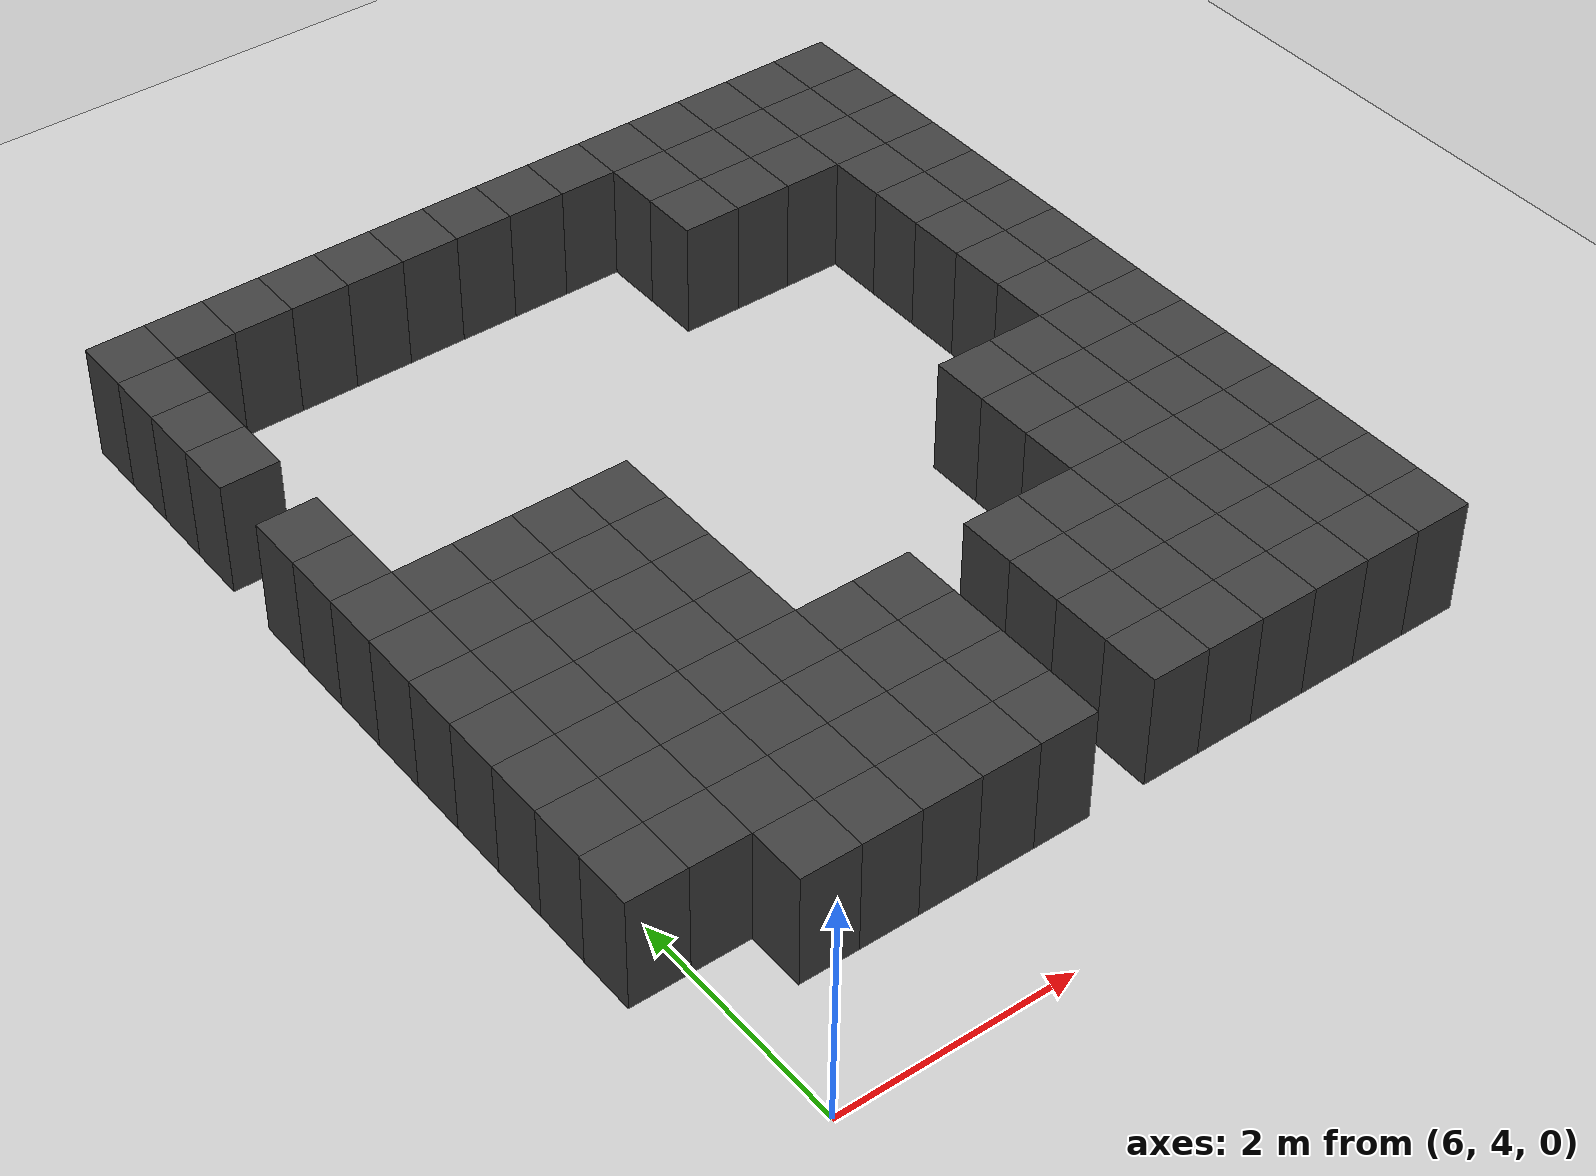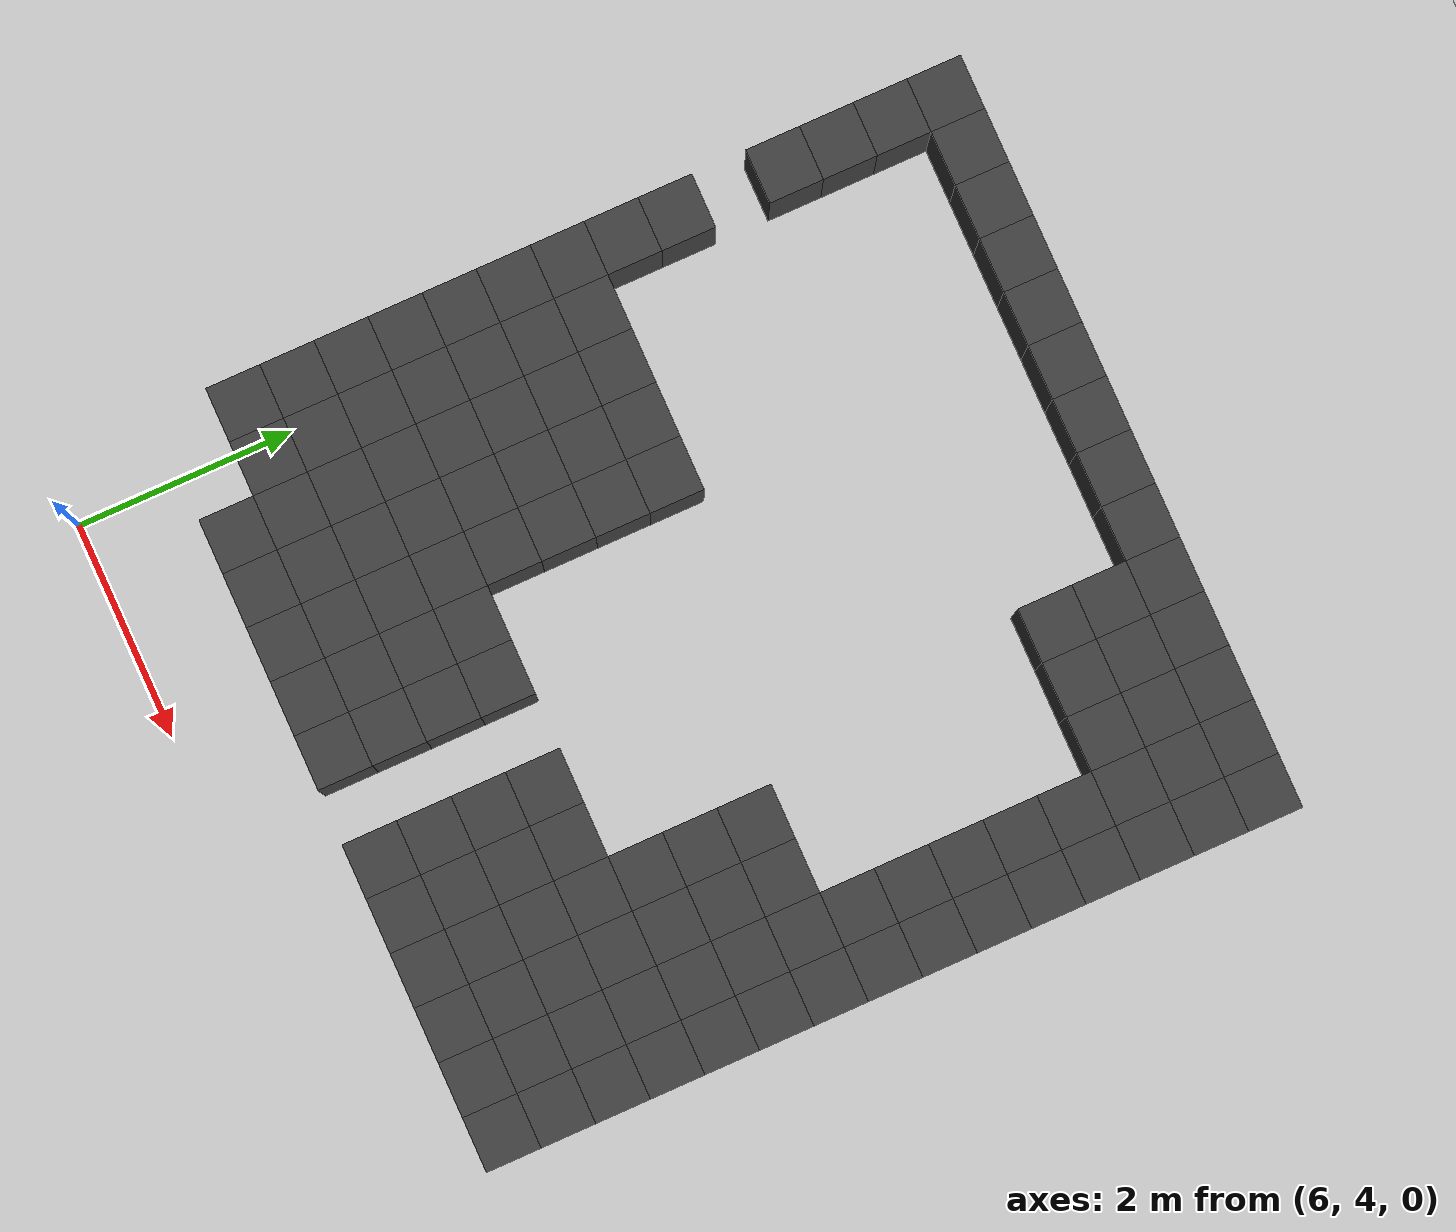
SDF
<sdf version="1.7">
 <world name="map_14706">
  <model name="ground_plane">
   <static>true</static>
   <link name="link">
    <collision name="collision">
     <geometry><plane><normal>0 0 1</normal><size>200 200</size></plane></geometry>
    </collision>
    <visual name="visual">
     <geometry><plane><normal>0 0 1</normal><size>200 200</size></plane></geometry>
     <material><ambient>0.8 0.8 0.8 1</ambient><diffuse>0.8 0.8 0.8 1</diffuse></material>
    </visual>
   </link>
  </model>
  <model name="maze_environment">
   <static>true</static>
   <link name="wall_36">
    <pose>5.750 12.250 0.500 0 0 0</pose>
    <collision name="col"><geometry><box><size>0.5 0.5 1.0</size></box></geometry></collision>
    <visual name="vis">
     <geometry><box><size>0.5 0.5 1.0</size></box></geometry>
     <material><ambient>0.15 0.15 0.15 1</ambient><diffuse>0.25 0.25 0.25 1</diffuse></material>
    </visual>
   </link>
   <link name="wall_37">
    <pose>6.250 12.250 0.500 0 0 0</pose>
    <collision name="col"><geometry><box><size>0.5 0.5 1.0</size></box></geometry></collision>
    <visual name="vis">
     <geometry><box><size>0.5 0.5 1.0</size></box></geometry>
     <material><ambient>0.15 0.15 0.15 1</ambient><diffuse>0.25 0.25 0.25 1</diffuse></material>
    </visual>
   </link>
   <link name="wall_38">
    <pose>6.750 12.250 0.500 0 0 0</pose>
    <collision name="col"><geometry><box><size>0.5 0.5 1.0</size></box></geometry></collision>
    <visual name="vis">
     <geometry><box><size>0.5 0.5 1.0</size></box></geometry>
     <material><ambient>0.15 0.15 0.15 1</ambient><diffuse>0.25 0.25 0.25 1</diffuse></material>
    </visual>
   </link>
   <link name="wall_39">
    <pose>7.250 12.250 0.500 0 0 0</pose>
    <collision name="col"><geometry><box><size>0.5 0.5 1.0</size></box></geometry></collision>
    <visual name="vis">
     <geometry><box><size>0.5 0.5 1.0</size></box></geometry>
     <material><ambient>0.15 0.15 0.15 1</ambient><diffuse>0.25 0.25 0.25 1</diffuse></material>
    </visual>
   </link>
   <link name="wall_40">
    <pose>7.750 12.250 0.500 0 0 0</pose>
    <collision name="col"><geometry><box><size>0.5 0.5 1.0</size></box></geometry></collision>
    <visual name="vis">
     <geometry><box><size>0.5 0.5 1.0</size></box></geometry>
     <material><ambient>0.15 0.15 0.15 1</ambient><diffuse>0.25 0.25 0.25 1</diffuse></material>
    </visual>
   </link>
   <link name="wall_41">
    <pose>8.250 12.250 0.500 0 0 0</pose>
    <collision name="col"><geometry><box><size>0.5 0.5 1.0</size></box></geometry></collision>
    <visual name="vis">
     <geometry><box><size>0.5 0.5 1.0</size></box></geometry>
     <material><ambient>0.15 0.15 0.15 1</ambient><diffuse>0.25 0.25 0.25 1</diffuse></material>
    </visual>
   </link>
   <link name="wall_42">
    <pose>8.750 12.250 0.500 0 0 0</pose>
    <collision name="col"><geometry><box><size>0.5 0.5 1.0</size></box></geometry></collision>
    <visual name="vis">
     <geometry><box><size>0.5 0.5 1.0</size></box></geometry>
     <material><ambient>0.15 0.15 0.15 1</ambient><diffuse>0.25 0.25 0.25 1</diffuse></material>
    </visual>
   </link>
   <link name="wall_43">
    <pose>9.250 12.250 0.500 0 0 0</pose>
    <collision name="col"><geometry><box><size>0.5 0.5 1.0</size></box></geometry></collision>
    <visual name="vis">
     <geometry><box><size>0.5 0.5 1.0</size></box></geometry>
     <material><ambient>0.15 0.15 0.15 1</ambient><diffuse>0.25 0.25 0.25 1</diffuse></material>
    </visual>
   </link>
   <link name="wall_44">
    <pose>9.750 12.250 0.500 0 0 0</pose>
    <collision name="col"><geometry><box><size>0.5 0.5 1.0</size></box></geometry></collision>
    <visual name="vis">
     <geometry><box><size>0.5 0.5 1.0</size></box></geometry>
     <material><ambient>0.15 0.15 0.15 1</ambient><diffuse>0.25 0.25 0.25 1</diffuse></material>
    </visual>
   </link>
   <link name="wall_45">
    <pose>10.250 12.250 0.500 0 0 0</pose>
    <collision name="col"><geometry><box><size>0.5 0.5 1.0</size></box></geometry></collision>
    <visual name="vis">
     <geometry><box><size>0.5 0.5 1.0</size></box></geometry>
     <material><ambient>0.15 0.15 0.15 1</ambient><diffuse>0.25 0.25 0.25 1</diffuse></material>
    </visual>
   </link>
   <link name="wall_46">
    <pose>10.750 12.250 0.500 0 0 0</pose>
    <collision name="col"><geometry><box><size>0.5 0.5 1.0</size></box></geometry></collision>
    <visual name="vis">
     <geometry><box><size>0.5 0.5 1.0</size></box></geometry>
     <material><ambient>0.15 0.15 0.15 1</ambient><diffuse>0.25 0.25 0.25 1</diffuse></material>
    </visual>
   </link>
   <link name="wall_47">
    <pose>11.250 12.250 0.500 0 0 0</pose>
    <collision name="col"><geometry><box><size>0.5 0.5 1.0</size></box></geometry></collision>
    <visual name="vis">
     <geometry><box><size>0.5 0.5 1.0</size></box></geometry>
     <material><ambient>0.15 0.15 0.15 1</ambient><diffuse>0.25 0.25 0.25 1</diffuse></material>
    </visual>
   </link>
   <link name="wall_48">
    <pose>11.750 12.250 0.500 0 0 0</pose>
    <collision name="col"><geometry><box><size>0.5 0.5 1.0</size></box></geometry></collision>
    <visual name="vis">
     <geometry><box><size>0.5 0.5 1.0</size></box></geometry>
     <material><ambient>0.15 0.15 0.15 1</ambient><diffuse>0.25 0.25 0.25 1</diffuse></material>
    </visual>
   </link>
   <link name="wall_49">
    <pose>12.250 12.250 0.500 0 0 0</pose>
    <collision name="col"><geometry><box><size>0.5 0.5 1.0</size></box></geometry></collision>
    <visual name="vis">
     <geometry><box><size>0.5 0.5 1.0</size></box></geometry>
     <material><ambient>0.15 0.15 0.15 1</ambient><diffuse>0.25 0.25 0.25 1</diffuse></material>
    </visual>
   </link>
   <link name="wall_83">
    <pose>5.750 11.750 0.500 0 0 0</pose>
    <collision name="col"><geometry><box><size>0.5 0.5 1.0</size></box></geometry></collision>
    <visual name="vis">
     <geometry><box><size>0.5 0.5 1.0</size></box></geometry>
     <material><ambient>0.15 0.15 0.15 1</ambient><diffuse>0.25 0.25 0.25 1</diffuse></material>
    </visual>
   </link>
   <link name="wall_84">
    <pose>10.250 11.750 0.500 0 0 0</pose>
    <collision name="col"><geometry><box><size>0.5 0.5 1.0</size></box></geometry></collision>
    <visual name="vis">
     <geometry><box><size>0.5 0.5 1.0</size></box></geometry>
     <material><ambient>0.15 0.15 0.15 1</ambient><diffuse>0.25 0.25 0.25 1</diffuse></material>
    </visual>
   </link>
   <link name="wall_85">
    <pose>10.750 11.750 0.500 0 0 0</pose>
    <collision name="col"><geometry><box><size>0.5 0.5 1.0</size></box></geometry></collision>
    <visual name="vis">
     <geometry><box><size>0.5 0.5 1.0</size></box></geometry>
     <material><ambient>0.15 0.15 0.15 1</ambient><diffuse>0.25 0.25 0.25 1</diffuse></material>
    </visual>
   </link>
   <link name="wall_86">
    <pose>11.250 11.750 0.500 0 0 0</pose>
    <collision name="col"><geometry><box><size>0.5 0.5 1.0</size></box></geometry></collision>
    <visual name="vis">
     <geometry><box><size>0.5 0.5 1.0</size></box></geometry>
     <material><ambient>0.15 0.15 0.15 1</ambient><diffuse>0.25 0.25 0.25 1</diffuse></material>
    </visual>
   </link>
   <link name="wall_87">
    <pose>11.750 11.750 0.500 0 0 0</pose>
    <collision name="col"><geometry><box><size>0.5 0.5 1.0</size></box></geometry></collision>
    <visual name="vis">
     <geometry><box><size>0.5 0.5 1.0</size></box></geometry>
     <material><ambient>0.15 0.15 0.15 1</ambient><diffuse>0.25 0.25 0.25 1</diffuse></material>
    </visual>
   </link>
   <link name="wall_88">
    <pose>12.250 11.750 0.500 0 0 0</pose>
    <collision name="col"><geometry><box><size>0.5 0.5 1.0</size></box></geometry></collision>
    <visual name="vis">
     <geometry><box><size>0.5 0.5 1.0</size></box></geometry>
     <material><ambient>0.15 0.15 0.15 1</ambient><diffuse>0.25 0.25 0.25 1</diffuse></material>
    </visual>
   </link>
   <link name="wall_122">
    <pose>5.750 11.250 0.500 0 0 0</pose>
    <collision name="col"><geometry><box><size>0.5 0.5 1.0</size></box></geometry></collision>
    <visual name="vis">
     <geometry><box><size>0.5 0.5 1.0</size></box></geometry>
     <material><ambient>0.15 0.15 0.15 1</ambient><diffuse>0.25 0.25 0.25 1</diffuse></material>
    </visual>
   </link>
   <link name="wall_123">
    <pose>10.250 11.250 0.500 0 0 0</pose>
    <collision name="col"><geometry><box><size>0.5 0.5 1.0</size></box></geometry></collision>
    <visual name="vis">
     <geometry><box><size>0.5 0.5 1.0</size></box></geometry>
     <material><ambient>0.15 0.15 0.15 1</ambient><diffuse>0.25 0.25 0.25 1</diffuse></material>
    </visual>
   </link>
   <link name="wall_124">
    <pose>10.750 11.250 0.500 0 0 0</pose>
    <collision name="col"><geometry><box><size>0.5 0.5 1.0</size></box></geometry></collision>
    <visual name="vis">
     <geometry><box><size>0.5 0.5 1.0</size></box></geometry>
     <material><ambient>0.15 0.15 0.15 1</ambient><diffuse>0.25 0.25 0.25 1</diffuse></material>
    </visual>
   </link>
   <link name="wall_125">
    <pose>11.250 11.250 0.500 0 0 0</pose>
    <collision name="col"><geometry><box><size>0.5 0.5 1.0</size></box></geometry></collision>
    <visual name="vis">
     <geometry><box><size>0.5 0.5 1.0</size></box></geometry>
     <material><ambient>0.15 0.15 0.15 1</ambient><diffuse>0.25 0.25 0.25 1</diffuse></material>
    </visual>
   </link>
   <link name="wall_126">
    <pose>11.750 11.250 0.500 0 0 0</pose>
    <collision name="col"><geometry><box><size>0.5 0.5 1.0</size></box></geometry></collision>
    <visual name="vis">
     <geometry><box><size>0.5 0.5 1.0</size></box></geometry>
     <material><ambient>0.15 0.15 0.15 1</ambient><diffuse>0.25 0.25 0.25 1</diffuse></material>
    </visual>
   </link>
   <link name="wall_127">
    <pose>12.250 11.250 0.500 0 0 0</pose>
    <collision name="col"><geometry><box><size>0.5 0.5 1.0</size></box></geometry></collision>
    <visual name="vis">
     <geometry><box><size>0.5 0.5 1.0</size></box></geometry>
     <material><ambient>0.15 0.15 0.15 1</ambient><diffuse>0.25 0.25 0.25 1</diffuse></material>
    </visual>
   </link>
   <link name="wall_154">
    <pose>5.750 10.750 0.500 0 0 0</pose>
    <collision name="col"><geometry><box><size>0.5 0.5 1.0</size></box></geometry></collision>
    <visual name="vis">
     <geometry><box><size>0.5 0.5 1.0</size></box></geometry>
     <material><ambient>0.15 0.15 0.15 1</ambient><diffuse>0.25 0.25 0.25 1</diffuse></material>
    </visual>
   </link>
   <link name="wall_155">
    <pose>11.750 10.750 0.500 0 0 0</pose>
    <collision name="col"><geometry><box><size>0.5 0.5 1.0</size></box></geometry></collision>
    <visual name="vis">
     <geometry><box><size>0.5 0.5 1.0</size></box></geometry>
     <material><ambient>0.15 0.15 0.15 1</ambient><diffuse>0.25 0.25 0.25 1</diffuse></material>
    </visual>
   </link>
   <link name="wall_156">
    <pose>12.250 10.750 0.500 0 0 0</pose>
    <collision name="col"><geometry><box><size>0.5 0.5 1.0</size></box></geometry></collision>
    <visual name="vis">
     <geometry><box><size>0.5 0.5 1.0</size></box></geometry>
     <material><ambient>0.15 0.15 0.15 1</ambient><diffuse>0.25 0.25 0.25 1</diffuse></material>
    </visual>
   </link>
   <link name="wall_183">
    <pose>11.750 10.250 0.500 0 0 0</pose>
    <collision name="col"><geometry><box><size>0.5 0.5 1.0</size></box></geometry></collision>
    <visual name="vis">
     <geometry><box><size>0.5 0.5 1.0</size></box></geometry>
     <material><ambient>0.15 0.15 0.15 1</ambient><diffuse>0.25 0.25 0.25 1</diffuse></material>
    </visual>
   </link>
   <link name="wall_184">
    <pose>12.250 10.250 0.500 0 0 0</pose>
    <collision name="col"><geometry><box><size>0.5 0.5 1.0</size></box></geometry></collision>
    <visual name="vis">
     <geometry><box><size>0.5 0.5 1.0</size></box></geometry>
     <material><ambient>0.15 0.15 0.15 1</ambient><diffuse>0.25 0.25 0.25 1</diffuse></material>
    </visual>
   </link>
   <link name="wall_207">
    <pose>5.750 9.750 0.500 0 0 0</pose>
    <collision name="col"><geometry><box><size>0.5 0.5 1.0</size></box></geometry></collision>
    <visual name="vis">
     <geometry><box><size>0.5 0.5 1.0</size></box></geometry>
     <material><ambient>0.15 0.15 0.15 1</ambient><diffuse>0.25 0.25 0.25 1</diffuse></material>
    </visual>
   </link>
   <link name="wall_208">
    <pose>11.750 9.750 0.500 0 0 0</pose>
    <collision name="col"><geometry><box><size>0.5 0.5 1.0</size></box></geometry></collision>
    <visual name="vis">
     <geometry><box><size>0.5 0.5 1.0</size></box></geometry>
     <material><ambient>0.15 0.15 0.15 1</ambient><diffuse>0.25 0.25 0.25 1</diffuse></material>
    </visual>
   </link>
   <link name="wall_209">
    <pose>12.250 9.750 0.500 0 0 0</pose>
    <collision name="col"><geometry><box><size>0.5 0.5 1.0</size></box></geometry></collision>
    <visual name="vis">
     <geometry><box><size>0.5 0.5 1.0</size></box></geometry>
     <material><ambient>0.15 0.15 0.15 1</ambient><diffuse>0.25 0.25 0.25 1</diffuse></material>
    </visual>
   </link>
   <link name="wall_233">
    <pose>5.750 9.250 0.500 0 0 0</pose>
    <collision name="col"><geometry><box><size>0.5 0.5 1.0</size></box></geometry></collision>
    <visual name="vis">
     <geometry><box><size>0.5 0.5 1.0</size></box></geometry>
     <material><ambient>0.15 0.15 0.15 1</ambient><diffuse>0.25 0.25 0.25 1</diffuse></material>
    </visual>
   </link>
   <link name="wall_234">
    <pose>11.750 9.250 0.500 0 0 0</pose>
    <collision name="col"><geometry><box><size>0.5 0.5 1.0</size></box></geometry></collision>
    <visual name="vis">
     <geometry><box><size>0.5 0.5 1.0</size></box></geometry>
     <material><ambient>0.15 0.15 0.15 1</ambient><diffuse>0.25 0.25 0.25 1</diffuse></material>
    </visual>
   </link>
   <link name="wall_235">
    <pose>12.250 9.250 0.500 0 0 0</pose>
    <collision name="col"><geometry><box><size>0.5 0.5 1.0</size></box></geometry></collision>
    <visual name="vis">
     <geometry><box><size>0.5 0.5 1.0</size></box></geometry>
     <material><ambient>0.15 0.15 0.15 1</ambient><diffuse>0.25 0.25 0.25 1</diffuse></material>
    </visual>
   </link>
   <link name="wall_261">
    <pose>5.750 8.750 0.500 0 0 0</pose>
    <collision name="col"><geometry><box><size>0.5 0.5 1.0</size></box></geometry></collision>
    <visual name="vis">
     <geometry><box><size>0.5 0.5 1.0</size></box></geometry>
     <material><ambient>0.15 0.15 0.15 1</ambient><diffuse>0.25 0.25 0.25 1</diffuse></material>
    </visual>
   </link>
   <link name="wall_262">
    <pose>6.250 8.750 0.500 0 0 0</pose>
    <collision name="col"><geometry><box><size>0.5 0.5 1.0</size></box></geometry></collision>
    <visual name="vis">
     <geometry><box><size>0.5 0.5 1.0</size></box></geometry>
     <material><ambient>0.15 0.15 0.15 1</ambient><diffuse>0.25 0.25 0.25 1</diffuse></material>
    </visual>
   </link>
   <link name="wall_263">
    <pose>6.750 8.750 0.500 0 0 0</pose>
    <collision name="col"><geometry><box><size>0.5 0.5 1.0</size></box></geometry></collision>
    <visual name="vis">
     <geometry><box><size>0.5 0.5 1.0</size></box></geometry>
     <material><ambient>0.15 0.15 0.15 1</ambient><diffuse>0.25 0.25 0.25 1</diffuse></material>
    </visual>
   </link>
   <link name="wall_264">
    <pose>7.250 8.750 0.500 0 0 0</pose>
    <collision name="col"><geometry><box><size>0.5 0.5 1.0</size></box></geometry></collision>
    <visual name="vis">
     <geometry><box><size>0.5 0.5 1.0</size></box></geometry>
     <material><ambient>0.15 0.15 0.15 1</ambient><diffuse>0.25 0.25 0.25 1</diffuse></material>
    </visual>
   </link>
   <link name="wall_265">
    <pose>7.750 8.750 0.500 0 0 0</pose>
    <collision name="col"><geometry><box><size>0.5 0.5 1.0</size></box></geometry></collision>
    <visual name="vis">
     <geometry><box><size>0.5 0.5 1.0</size></box></geometry>
     <material><ambient>0.15 0.15 0.15 1</ambient><diffuse>0.25 0.25 0.25 1</diffuse></material>
    </visual>
   </link>
   <link name="wall_266">
    <pose>11.750 8.750 0.500 0 0 0</pose>
    <collision name="col"><geometry><box><size>0.5 0.5 1.0</size></box></geometry></collision>
    <visual name="vis">
     <geometry><box><size>0.5 0.5 1.0</size></box></geometry>
     <material><ambient>0.15 0.15 0.15 1</ambient><diffuse>0.25 0.25 0.25 1</diffuse></material>
    </visual>
   </link>
   <link name="wall_267">
    <pose>12.250 8.750 0.500 0 0 0</pose>
    <collision name="col"><geometry><box><size>0.5 0.5 1.0</size></box></geometry></collision>
    <visual name="vis">
     <geometry><box><size>0.5 0.5 1.0</size></box></geometry>
     <material><ambient>0.15 0.15 0.15 1</ambient><diffuse>0.25 0.25 0.25 1</diffuse></material>
    </visual>
   </link>
   <link name="wall_288">
    <pose>5.750 8.250 0.500 0 0 0</pose>
    <collision name="col"><geometry><box><size>0.5 0.5 1.0</size></box></geometry></collision>
    <visual name="vis">
     <geometry><box><size>0.5 0.5 1.0</size></box></geometry>
     <material><ambient>0.15 0.15 0.15 1</ambient><diffuse>0.25 0.25 0.25 1</diffuse></material>
    </visual>
   </link>
   <link name="wall_289">
    <pose>6.250 8.250 0.500 0 0 0</pose>
    <collision name="col"><geometry><box><size>0.5 0.5 1.0</size></box></geometry></collision>
    <visual name="vis">
     <geometry><box><size>0.5 0.5 1.0</size></box></geometry>
     <material><ambient>0.15 0.15 0.15 1</ambient><diffuse>0.25 0.25 0.25 1</diffuse></material>
    </visual>
   </link>
   <link name="wall_290">
    <pose>6.750 8.250 0.500 0 0 0</pose>
    <collision name="col"><geometry><box><size>0.5 0.5 1.0</size></box></geometry></collision>
    <visual name="vis">
     <geometry><box><size>0.5 0.5 1.0</size></box></geometry>
     <material><ambient>0.15 0.15 0.15 1</ambient><diffuse>0.25 0.25 0.25 1</diffuse></material>
    </visual>
   </link>
   <link name="wall_291">
    <pose>7.250 8.250 0.500 0 0 0</pose>
    <collision name="col"><geometry><box><size>0.5 0.5 1.0</size></box></geometry></collision>
    <visual name="vis">
     <geometry><box><size>0.5 0.5 1.0</size></box></geometry>
     <material><ambient>0.15 0.15 0.15 1</ambient><diffuse>0.25 0.25 0.25 1</diffuse></material>
    </visual>
   </link>
   <link name="wall_292">
    <pose>7.750 8.250 0.500 0 0 0</pose>
    <collision name="col"><geometry><box><size>0.5 0.5 1.0</size></box></geometry></collision>
    <visual name="vis">
     <geometry><box><size>0.5 0.5 1.0</size></box></geometry>
     <material><ambient>0.15 0.15 0.15 1</ambient><diffuse>0.25 0.25 0.25 1</diffuse></material>
    </visual>
   </link>
   <link name="wall_293">
    <pose>10.750 8.250 0.500 0 0 0</pose>
    <collision name="col"><geometry><box><size>0.5 0.5 1.0</size></box></geometry></collision>
    <visual name="vis">
     <geometry><box><size>0.5 0.5 1.0</size></box></geometry>
     <material><ambient>0.15 0.15 0.15 1</ambient><diffuse>0.25 0.25 0.25 1</diffuse></material>
    </visual>
   </link>
   <link name="wall_294">
    <pose>11.250 8.250 0.500 0 0 0</pose>
    <collision name="col"><geometry><box><size>0.5 0.5 1.0</size></box></geometry></collision>
    <visual name="vis">
     <geometry><box><size>0.5 0.5 1.0</size></box></geometry>
     <material><ambient>0.15 0.15 0.15 1</ambient><diffuse>0.25 0.25 0.25 1</diffuse></material>
    </visual>
   </link>
   <link name="wall_295">
    <pose>11.750 8.250 0.500 0 0 0</pose>
    <collision name="col"><geometry><box><size>0.5 0.5 1.0</size></box></geometry></collision>
    <visual name="vis">
     <geometry><box><size>0.5 0.5 1.0</size></box></geometry>
     <material><ambient>0.15 0.15 0.15 1</ambient><diffuse>0.25 0.25 0.25 1</diffuse></material>
    </visual>
   </link>
   <link name="wall_296">
    <pose>12.250 8.250 0.500 0 0 0</pose>
    <collision name="col"><geometry><box><size>0.5 0.5 1.0</size></box></geometry></collision>
    <visual name="vis">
     <geometry><box><size>0.5 0.5 1.0</size></box></geometry>
     <material><ambient>0.15 0.15 0.15 1</ambient><diffuse>0.25 0.25 0.25 1</diffuse></material>
    </visual>
   </link>
   <link name="wall_312">
    <pose>5.750 7.750 0.500 0 0 0</pose>
    <collision name="col"><geometry><box><size>0.5 0.5 1.0</size></box></geometry></collision>
    <visual name="vis">
     <geometry><box><size>0.5 0.5 1.0</size></box></geometry>
     <material><ambient>0.15 0.15 0.15 1</ambient><diffuse>0.25 0.25 0.25 1</diffuse></material>
    </visual>
   </link>
   <link name="wall_313">
    <pose>6.250 7.750 0.500 0 0 0</pose>
    <collision name="col"><geometry><box><size>0.5 0.5 1.0</size></box></geometry></collision>
    <visual name="vis">
     <geometry><box><size>0.5 0.5 1.0</size></box></geometry>
     <material><ambient>0.15 0.15 0.15 1</ambient><diffuse>0.25 0.25 0.25 1</diffuse></material>
    </visual>
   </link>
   <link name="wall_314">
    <pose>6.750 7.750 0.500 0 0 0</pose>
    <collision name="col"><geometry><box><size>0.5 0.5 1.0</size></box></geometry></collision>
    <visual name="vis">
     <geometry><box><size>0.5 0.5 1.0</size></box></geometry>
     <material><ambient>0.15 0.15 0.15 1</ambient><diffuse>0.25 0.25 0.25 1</diffuse></material>
    </visual>
   </link>
   <link name="wall_315">
    <pose>7.250 7.750 0.500 0 0 0</pose>
    <collision name="col"><geometry><box><size>0.5 0.5 1.0</size></box></geometry></collision>
    <visual name="vis">
     <geometry><box><size>0.5 0.5 1.0</size></box></geometry>
     <material><ambient>0.15 0.15 0.15 1</ambient><diffuse>0.25 0.25 0.25 1</diffuse></material>
    </visual>
   </link>
   <link name="wall_316">
    <pose>7.750 7.750 0.500 0 0 0</pose>
    <collision name="col"><geometry><box><size>0.5 0.5 1.0</size></box></geometry></collision>
    <visual name="vis">
     <geometry><box><size>0.5 0.5 1.0</size></box></geometry>
     <material><ambient>0.15 0.15 0.15 1</ambient><diffuse>0.25 0.25 0.25 1</diffuse></material>
    </visual>
   </link>
   <link name="wall_317">
    <pose>10.750 7.750 0.500 0 0 0</pose>
    <collision name="col"><geometry><box><size>0.5 0.5 1.0</size></box></geometry></collision>
    <visual name="vis">
     <geometry><box><size>0.5 0.5 1.0</size></box></geometry>
     <material><ambient>0.15 0.15 0.15 1</ambient><diffuse>0.25 0.25 0.25 1</diffuse></material>
    </visual>
   </link>
   <link name="wall_318">
    <pose>11.250 7.750 0.500 0 0 0</pose>
    <collision name="col"><geometry><box><size>0.5 0.5 1.0</size></box></geometry></collision>
    <visual name="vis">
     <geometry><box><size>0.5 0.5 1.0</size></box></geometry>
     <material><ambient>0.15 0.15 0.15 1</ambient><diffuse>0.25 0.25 0.25 1</diffuse></material>
    </visual>
   </link>
   <link name="wall_319">
    <pose>11.750 7.750 0.500 0 0 0</pose>
    <collision name="col"><geometry><box><size>0.5 0.5 1.0</size></box></geometry></collision>
    <visual name="vis">
     <geometry><box><size>0.5 0.5 1.0</size></box></geometry>
     <material><ambient>0.15 0.15 0.15 1</ambient><diffuse>0.25 0.25 0.25 1</diffuse></material>
    </visual>
   </link>
   <link name="wall_320">
    <pose>12.250 7.750 0.500 0 0 0</pose>
    <collision name="col"><geometry><box><size>0.5 0.5 1.0</size></box></geometry></collision>
    <visual name="vis">
     <geometry><box><size>0.5 0.5 1.0</size></box></geometry>
     <material><ambient>0.15 0.15 0.15 1</ambient><diffuse>0.25 0.25 0.25 1</diffuse></material>
    </visual>
   </link>
   <link name="wall_336">
    <pose>5.750 7.250 0.500 0 0 0</pose>
    <collision name="col"><geometry><box><size>0.5 0.5 1.0</size></box></geometry></collision>
    <visual name="vis">
     <geometry><box><size>0.5 0.5 1.0</size></box></geometry>
     <material><ambient>0.15 0.15 0.15 1</ambient><diffuse>0.25 0.25 0.25 1</diffuse></material>
    </visual>
   </link>
   <link name="wall_337">
    <pose>6.250 7.250 0.500 0 0 0</pose>
    <collision name="col"><geometry><box><size>0.5 0.5 1.0</size></box></geometry></collision>
    <visual name="vis">
     <geometry><box><size>0.5 0.5 1.0</size></box></geometry>
     <material><ambient>0.15 0.15 0.15 1</ambient><diffuse>0.25 0.25 0.25 1</diffuse></material>
    </visual>
   </link>
   <link name="wall_338">
    <pose>6.750 7.250 0.500 0 0 0</pose>
    <collision name="col"><geometry><box><size>0.5 0.5 1.0</size></box></geometry></collision>
    <visual name="vis">
     <geometry><box><size>0.5 0.5 1.0</size></box></geometry>
     <material><ambient>0.15 0.15 0.15 1</ambient><diffuse>0.25 0.25 0.25 1</diffuse></material>
    </visual>
   </link>
   <link name="wall_339">
    <pose>7.250 7.250 0.500 0 0 0</pose>
    <collision name="col"><geometry><box><size>0.5 0.5 1.0</size></box></geometry></collision>
    <visual name="vis">
     <geometry><box><size>0.5 0.5 1.0</size></box></geometry>
     <material><ambient>0.15 0.15 0.15 1</ambient><diffuse>0.25 0.25 0.25 1</diffuse></material>
    </visual>
   </link>
   <link name="wall_340">
    <pose>7.750 7.250 0.500 0 0 0</pose>
    <collision name="col"><geometry><box><size>0.5 0.5 1.0</size></box></geometry></collision>
    <visual name="vis">
     <geometry><box><size>0.5 0.5 1.0</size></box></geometry>
     <material><ambient>0.15 0.15 0.15 1</ambient><diffuse>0.25 0.25 0.25 1</diffuse></material>
    </visual>
   </link>
   <link name="wall_341">
    <pose>10.750 7.250 0.500 0 0 0</pose>
    <collision name="col"><geometry><box><size>0.5 0.5 1.0</size></box></geometry></collision>
    <visual name="vis">
     <geometry><box><size>0.5 0.5 1.0</size></box></geometry>
     <material><ambient>0.15 0.15 0.15 1</ambient><diffuse>0.25 0.25 0.25 1</diffuse></material>
    </visual>
   </link>
   <link name="wall_342">
    <pose>11.250 7.250 0.500 0 0 0</pose>
    <collision name="col"><geometry><box><size>0.5 0.5 1.0</size></box></geometry></collision>
    <visual name="vis">
     <geometry><box><size>0.5 0.5 1.0</size></box></geometry>
     <material><ambient>0.15 0.15 0.15 1</ambient><diffuse>0.25 0.25 0.25 1</diffuse></material>
    </visual>
   </link>
   <link name="wall_343">
    <pose>11.750 7.250 0.500 0 0 0</pose>
    <collision name="col"><geometry><box><size>0.5 0.5 1.0</size></box></geometry></collision>
    <visual name="vis">
     <geometry><box><size>0.5 0.5 1.0</size></box></geometry>
     <material><ambient>0.15 0.15 0.15 1</ambient><diffuse>0.25 0.25 0.25 1</diffuse></material>
    </visual>
   </link>
   <link name="wall_344">
    <pose>12.250 7.250 0.500 0 0 0</pose>
    <collision name="col"><geometry><box><size>0.5 0.5 1.0</size></box></geometry></collision>
    <visual name="vis">
     <geometry><box><size>0.5 0.5 1.0</size></box></geometry>
     <material><ambient>0.15 0.15 0.15 1</ambient><diffuse>0.25 0.25 0.25 1</diffuse></material>
    </visual>
   </link>
   <link name="wall_359">
    <pose>5.750 6.750 0.500 0 0 0</pose>
    <collision name="col"><geometry><box><size>0.5 0.5 1.0</size></box></geometry></collision>
    <visual name="vis">
     <geometry><box><size>0.5 0.5 1.0</size></box></geometry>
     <material><ambient>0.15 0.15 0.15 1</ambient><diffuse>0.25 0.25 0.25 1</diffuse></material>
    </visual>
   </link>
   <link name="wall_360">
    <pose>6.250 6.750 0.500 0 0 0</pose>
    <collision name="col"><geometry><box><size>0.5 0.5 1.0</size></box></geometry></collision>
    <visual name="vis">
     <geometry><box><size>0.5 0.5 1.0</size></box></geometry>
     <material><ambient>0.15 0.15 0.15 1</ambient><diffuse>0.25 0.25 0.25 1</diffuse></material>
    </visual>
   </link>
   <link name="wall_361">
    <pose>6.750 6.750 0.500 0 0 0</pose>
    <collision name="col"><geometry><box><size>0.5 0.5 1.0</size></box></geometry></collision>
    <visual name="vis">
     <geometry><box><size>0.5 0.5 1.0</size></box></geometry>
     <material><ambient>0.15 0.15 0.15 1</ambient><diffuse>0.25 0.25 0.25 1</diffuse></material>
    </visual>
   </link>
   <link name="wall_362">
    <pose>7.250 6.750 0.500 0 0 0</pose>
    <collision name="col"><geometry><box><size>0.5 0.5 1.0</size></box></geometry></collision>
    <visual name="vis">
     <geometry><box><size>0.5 0.5 1.0</size></box></geometry>
     <material><ambient>0.15 0.15 0.15 1</ambient><diffuse>0.25 0.25 0.25 1</diffuse></material>
    </visual>
   </link>
   <link name="wall_363">
    <pose>7.750 6.750 0.500 0 0 0</pose>
    <collision name="col"><geometry><box><size>0.5 0.5 1.0</size></box></geometry></collision>
    <visual name="vis">
     <geometry><box><size>0.5 0.5 1.0</size></box></geometry>
     <material><ambient>0.15 0.15 0.15 1</ambient><diffuse>0.25 0.25 0.25 1</diffuse></material>
    </visual>
   </link>
   <link name="wall_364">
    <pose>8.250 6.750 0.500 0 0 0</pose>
    <collision name="col"><geometry><box><size>0.5 0.5 1.0</size></box></geometry></collision>
    <visual name="vis">
     <geometry><box><size>0.5 0.5 1.0</size></box></geometry>
     <material><ambient>0.15 0.15 0.15 1</ambient><diffuse>0.25 0.25 0.25 1</diffuse></material>
    </visual>
   </link>
   <link name="wall_365">
    <pose>8.750 6.750 0.500 0 0 0</pose>
    <collision name="col"><geometry><box><size>0.5 0.5 1.0</size></box></geometry></collision>
    <visual name="vis">
     <geometry><box><size>0.5 0.5 1.0</size></box></geometry>
     <material><ambient>0.15 0.15 0.15 1</ambient><diffuse>0.25 0.25 0.25 1</diffuse></material>
    </visual>
   </link>
   <link name="wall_366">
    <pose>9.750 6.750 0.500 0 0 0</pose>
    <collision name="col"><geometry><box><size>0.5 0.5 1.0</size></box></geometry></collision>
    <visual name="vis">
     <geometry><box><size>0.5 0.5 1.0</size></box></geometry>
     <material><ambient>0.15 0.15 0.15 1</ambient><diffuse>0.25 0.25 0.25 1</diffuse></material>
    </visual>
   </link>
   <link name="wall_367">
    <pose>10.250 6.750 0.500 0 0 0</pose>
    <collision name="col"><geometry><box><size>0.5 0.5 1.0</size></box></geometry></collision>
    <visual name="vis">
     <geometry><box><size>0.5 0.5 1.0</size></box></geometry>
     <material><ambient>0.15 0.15 0.15 1</ambient><diffuse>0.25 0.25 0.25 1</diffuse></material>
    </visual>
   </link>
   <link name="wall_368">
    <pose>10.750 6.750 0.500 0 0 0</pose>
    <collision name="col"><geometry><box><size>0.5 0.5 1.0</size></box></geometry></collision>
    <visual name="vis">
     <geometry><box><size>0.5 0.5 1.0</size></box></geometry>
     <material><ambient>0.15 0.15 0.15 1</ambient><diffuse>0.25 0.25 0.25 1</diffuse></material>
    </visual>
   </link>
   <link name="wall_369">
    <pose>11.250 6.750 0.500 0 0 0</pose>
    <collision name="col"><geometry><box><size>0.5 0.5 1.0</size></box></geometry></collision>
    <visual name="vis">
     <geometry><box><size>0.5 0.5 1.0</size></box></geometry>
     <material><ambient>0.15 0.15 0.15 1</ambient><diffuse>0.25 0.25 0.25 1</diffuse></material>
    </visual>
   </link>
   <link name="wall_370">
    <pose>11.750 6.750 0.500 0 0 0</pose>
    <collision name="col"><geometry><box><size>0.5 0.5 1.0</size></box></geometry></collision>
    <visual name="vis">
     <geometry><box><size>0.5 0.5 1.0</size></box></geometry>
     <material><ambient>0.15 0.15 0.15 1</ambient><diffuse>0.25 0.25 0.25 1</diffuse></material>
    </visual>
   </link>
   <link name="wall_371">
    <pose>12.250 6.750 0.500 0 0 0</pose>
    <collision name="col"><geometry><box><size>0.5 0.5 1.0</size></box></geometry></collision>
    <visual name="vis">
     <geometry><box><size>0.5 0.5 1.0</size></box></geometry>
     <material><ambient>0.15 0.15 0.15 1</ambient><diffuse>0.25 0.25 0.25 1</diffuse></material>
    </visual>
   </link>
   <link name="wall_385">
    <pose>5.750 6.250 0.500 0 0 0</pose>
    <collision name="col"><geometry><box><size>0.5 0.5 1.0</size></box></geometry></collision>
    <visual name="vis">
     <geometry><box><size>0.5 0.5 1.0</size></box></geometry>
     <material><ambient>0.15 0.15 0.15 1</ambient><diffuse>0.25 0.25 0.25 1</diffuse></material>
    </visual>
   </link>
   <link name="wall_386">
    <pose>6.250 6.250 0.500 0 0 0</pose>
    <collision name="col"><geometry><box><size>0.5 0.5 1.0</size></box></geometry></collision>
    <visual name="vis">
     <geometry><box><size>0.5 0.5 1.0</size></box></geometry>
     <material><ambient>0.15 0.15 0.15 1</ambient><diffuse>0.25 0.25 0.25 1</diffuse></material>
    </visual>
   </link>
   <link name="wall_387">
    <pose>6.750 6.250 0.500 0 0 0</pose>
    <collision name="col"><geometry><box><size>0.5 0.5 1.0</size></box></geometry></collision>
    <visual name="vis">
     <geometry><box><size>0.5 0.5 1.0</size></box></geometry>
     <material><ambient>0.15 0.15 0.15 1</ambient><diffuse>0.25 0.25 0.25 1</diffuse></material>
    </visual>
   </link>
   <link name="wall_388">
    <pose>7.250 6.250 0.500 0 0 0</pose>
    <collision name="col"><geometry><box><size>0.5 0.5 1.0</size></box></geometry></collision>
    <visual name="vis">
     <geometry><box><size>0.5 0.5 1.0</size></box></geometry>
     <material><ambient>0.15 0.15 0.15 1</ambient><diffuse>0.25 0.25 0.25 1</diffuse></material>
    </visual>
   </link>
   <link name="wall_389">
    <pose>7.750 6.250 0.500 0 0 0</pose>
    <collision name="col"><geometry><box><size>0.5 0.5 1.0</size></box></geometry></collision>
    <visual name="vis">
     <geometry><box><size>0.5 0.5 1.0</size></box></geometry>
     <material><ambient>0.15 0.15 0.15 1</ambient><diffuse>0.25 0.25 0.25 1</diffuse></material>
    </visual>
   </link>
   <link name="wall_390">
    <pose>8.250 6.250 0.500 0 0 0</pose>
    <collision name="col"><geometry><box><size>0.5 0.5 1.0</size></box></geometry></collision>
    <visual name="vis">
     <geometry><box><size>0.5 0.5 1.0</size></box></geometry>
     <material><ambient>0.15 0.15 0.15 1</ambient><diffuse>0.25 0.25 0.25 1</diffuse></material>
    </visual>
   </link>
   <link name="wall_391">
    <pose>8.750 6.250 0.500 0 0 0</pose>
    <collision name="col"><geometry><box><size>0.5 0.5 1.0</size></box></geometry></collision>
    <visual name="vis">
     <geometry><box><size>0.5 0.5 1.0</size></box></geometry>
     <material><ambient>0.15 0.15 0.15 1</ambient><diffuse>0.25 0.25 0.25 1</diffuse></material>
    </visual>
   </link>
   <link name="wall_392">
    <pose>9.750 6.250 0.500 0 0 0</pose>
    <collision name="col"><geometry><box><size>0.5 0.5 1.0</size></box></geometry></collision>
    <visual name="vis">
     <geometry><box><size>0.5 0.5 1.0</size></box></geometry>
     <material><ambient>0.15 0.15 0.15 1</ambient><diffuse>0.25 0.25 0.25 1</diffuse></material>
    </visual>
   </link>
   <link name="wall_393">
    <pose>10.250 6.250 0.500 0 0 0</pose>
    <collision name="col"><geometry><box><size>0.5 0.5 1.0</size></box></geometry></collision>
    <visual name="vis">
     <geometry><box><size>0.5 0.5 1.0</size></box></geometry>
     <material><ambient>0.15 0.15 0.15 1</ambient><diffuse>0.25 0.25 0.25 1</diffuse></material>
    </visual>
   </link>
   <link name="wall_394">
    <pose>10.750 6.250 0.500 0 0 0</pose>
    <collision name="col"><geometry><box><size>0.5 0.5 1.0</size></box></geometry></collision>
    <visual name="vis">
     <geometry><box><size>0.5 0.5 1.0</size></box></geometry>
     <material><ambient>0.15 0.15 0.15 1</ambient><diffuse>0.25 0.25 0.25 1</diffuse></material>
    </visual>
   </link>
   <link name="wall_395">
    <pose>11.250 6.250 0.500 0 0 0</pose>
    <collision name="col"><geometry><box><size>0.5 0.5 1.0</size></box></geometry></collision>
    <visual name="vis">
     <geometry><box><size>0.5 0.5 1.0</size></box></geometry>
     <material><ambient>0.15 0.15 0.15 1</ambient><diffuse>0.25 0.25 0.25 1</diffuse></material>
    </visual>
   </link>
   <link name="wall_396">
    <pose>11.750 6.250 0.500 0 0 0</pose>
    <collision name="col"><geometry><box><size>0.5 0.5 1.0</size></box></geometry></collision>
    <visual name="vis">
     <geometry><box><size>0.5 0.5 1.0</size></box></geometry>
     <material><ambient>0.15 0.15 0.15 1</ambient><diffuse>0.25 0.25 0.25 1</diffuse></material>
    </visual>
   </link>
   <link name="wall_397">
    <pose>12.250 6.250 0.500 0 0 0</pose>
    <collision name="col"><geometry><box><size>0.5 0.5 1.0</size></box></geometry></collision>
    <visual name="vis">
     <geometry><box><size>0.5 0.5 1.0</size></box></geometry>
     <material><ambient>0.15 0.15 0.15 1</ambient><diffuse>0.25 0.25 0.25 1</diffuse></material>
    </visual>
   </link>
   <link name="wall_415">
    <pose>5.750 5.750 0.500 0 0 0</pose>
    <collision name="col"><geometry><box><size>0.5 0.5 1.0</size></box></geometry></collision>
    <visual name="vis">
     <geometry><box><size>0.5 0.5 1.0</size></box></geometry>
     <material><ambient>0.15 0.15 0.15 1</ambient><diffuse>0.25 0.25 0.25 1</diffuse></material>
    </visual>
   </link>
   <link name="wall_416">
    <pose>6.250 5.750 0.500 0 0 0</pose>
    <collision name="col"><geometry><box><size>0.5 0.5 1.0</size></box></geometry></collision>
    <visual name="vis">
     <geometry><box><size>0.5 0.5 1.0</size></box></geometry>
     <material><ambient>0.15 0.15 0.15 1</ambient><diffuse>0.25 0.25 0.25 1</diffuse></material>
    </visual>
   </link>
   <link name="wall_417">
    <pose>6.750 5.750 0.500 0 0 0</pose>
    <collision name="col"><geometry><box><size>0.5 0.5 1.0</size></box></geometry></collision>
    <visual name="vis">
     <geometry><box><size>0.5 0.5 1.0</size></box></geometry>
     <material><ambient>0.15 0.15 0.15 1</ambient><diffuse>0.25 0.25 0.25 1</diffuse></material>
    </visual>
   </link>
   <link name="wall_418">
    <pose>7.250 5.750 0.500 0 0 0</pose>
    <collision name="col"><geometry><box><size>0.5 0.5 1.0</size></box></geometry></collision>
    <visual name="vis">
     <geometry><box><size>0.5 0.5 1.0</size></box></geometry>
     <material><ambient>0.15 0.15 0.15 1</ambient><diffuse>0.25 0.25 0.25 1</diffuse></material>
    </visual>
   </link>
   <link name="wall_419">
    <pose>7.750 5.750 0.500 0 0 0</pose>
    <collision name="col"><geometry><box><size>0.5 0.5 1.0</size></box></geometry></collision>
    <visual name="vis">
     <geometry><box><size>0.5 0.5 1.0</size></box></geometry>
     <material><ambient>0.15 0.15 0.15 1</ambient><diffuse>0.25 0.25 0.25 1</diffuse></material>
    </visual>
   </link>
   <link name="wall_420">
    <pose>8.250 5.750 0.500 0 0 0</pose>
    <collision name="col"><geometry><box><size>0.5 0.5 1.0</size></box></geometry></collision>
    <visual name="vis">
     <geometry><box><size>0.5 0.5 1.0</size></box></geometry>
     <material><ambient>0.15 0.15 0.15 1</ambient><diffuse>0.25 0.25 0.25 1</diffuse></material>
    </visual>
   </link>
   <link name="wall_421">
    <pose>8.750 5.750 0.500 0 0 0</pose>
    <collision name="col"><geometry><box><size>0.5 0.5 1.0</size></box></geometry></collision>
    <visual name="vis">
     <geometry><box><size>0.5 0.5 1.0</size></box></geometry>
     <material><ambient>0.15 0.15 0.15 1</ambient><diffuse>0.25 0.25 0.25 1</diffuse></material>
    </visual>
   </link>
   <link name="wall_422">
    <pose>9.750 5.750 0.500 0 0 0</pose>
    <collision name="col"><geometry><box><size>0.5 0.5 1.0</size></box></geometry></collision>
    <visual name="vis">
     <geometry><box><size>0.5 0.5 1.0</size></box></geometry>
     <material><ambient>0.15 0.15 0.15 1</ambient><diffuse>0.25 0.25 0.25 1</diffuse></material>
    </visual>
   </link>
   <link name="wall_423">
    <pose>10.250 5.750 0.500 0 0 0</pose>
    <collision name="col"><geometry><box><size>0.5 0.5 1.0</size></box></geometry></collision>
    <visual name="vis">
     <geometry><box><size>0.5 0.5 1.0</size></box></geometry>
     <material><ambient>0.15 0.15 0.15 1</ambient><diffuse>0.25 0.25 0.25 1</diffuse></material>
    </visual>
   </link>
   <link name="wall_424">
    <pose>10.750 5.750 0.500 0 0 0</pose>
    <collision name="col"><geometry><box><size>0.5 0.5 1.0</size></box></geometry></collision>
    <visual name="vis">
     <geometry><box><size>0.5 0.5 1.0</size></box></geometry>
     <material><ambient>0.15 0.15 0.15 1</ambient><diffuse>0.25 0.25 0.25 1</diffuse></material>
    </visual>
   </link>
   <link name="wall_425">
    <pose>11.250 5.750 0.500 0 0 0</pose>
    <collision name="col"><geometry><box><size>0.5 0.5 1.0</size></box></geometry></collision>
    <visual name="vis">
     <geometry><box><size>0.5 0.5 1.0</size></box></geometry>
     <material><ambient>0.15 0.15 0.15 1</ambient><diffuse>0.25 0.25 0.25 1</diffuse></material>
    </visual>
   </link>
   <link name="wall_426">
    <pose>11.750 5.750 0.500 0 0 0</pose>
    <collision name="col"><geometry><box><size>0.5 0.5 1.0</size></box></geometry></collision>
    <visual name="vis">
     <geometry><box><size>0.5 0.5 1.0</size></box></geometry>
     <material><ambient>0.15 0.15 0.15 1</ambient><diffuse>0.25 0.25 0.25 1</diffuse></material>
    </visual>
   </link>
   <link name="wall_427">
    <pose>12.250 5.750 0.500 0 0 0</pose>
    <collision name="col"><geometry><box><size>0.5 0.5 1.0</size></box></geometry></collision>
    <visual name="vis">
     <geometry><box><size>0.5 0.5 1.0</size></box></geometry>
     <material><ambient>0.15 0.15 0.15 1</ambient><diffuse>0.25 0.25 0.25 1</diffuse></material>
    </visual>
   </link>
   <link name="wall_448">
    <pose>6.750 5.250 0.500 0 0 0</pose>
    <collision name="col"><geometry><box><size>0.5 0.5 1.0</size></box></geometry></collision>
    <visual name="vis">
     <geometry><box><size>0.5 0.5 1.0</size></box></geometry>
     <material><ambient>0.15 0.15 0.15 1</ambient><diffuse>0.25 0.25 0.25 1</diffuse></material>
    </visual>
   </link>
   <link name="wall_449">
    <pose>7.250 5.250 0.500 0 0 0</pose>
    <collision name="col"><geometry><box><size>0.5 0.5 1.0</size></box></geometry></collision>
    <visual name="vis">
     <geometry><box><size>0.5 0.5 1.0</size></box></geometry>
     <material><ambient>0.15 0.15 0.15 1</ambient><diffuse>0.25 0.25 0.25 1</diffuse></material>
    </visual>
   </link>
   <link name="wall_450">
    <pose>7.750 5.250 0.500 0 0 0</pose>
    <collision name="col"><geometry><box><size>0.5 0.5 1.0</size></box></geometry></collision>
    <visual name="vis">
     <geometry><box><size>0.5 0.5 1.0</size></box></geometry>
     <material><ambient>0.15 0.15 0.15 1</ambient><diffuse>0.25 0.25 0.25 1</diffuse></material>
    </visual>
   </link>
   <link name="wall_451">
    <pose>8.250 5.250 0.500 0 0 0</pose>
    <collision name="col"><geometry><box><size>0.5 0.5 1.0</size></box></geometry></collision>
    <visual name="vis">
     <geometry><box><size>0.5 0.5 1.0</size></box></geometry>
     <material><ambient>0.15 0.15 0.15 1</ambient><diffuse>0.25 0.25 0.25 1</diffuse></material>
    </visual>
   </link>
   <link name="wall_452">
    <pose>8.750 5.250 0.500 0 0 0</pose>
    <collision name="col"><geometry><box><size>0.5 0.5 1.0</size></box></geometry></collision>
    <visual name="vis">
     <geometry><box><size>0.5 0.5 1.0</size></box></geometry>
     <material><ambient>0.15 0.15 0.15 1</ambient><diffuse>0.25 0.25 0.25 1</diffuse></material>
    </visual>
   </link>
   <link name="wall_453">
    <pose>9.750 5.250 0.500 0 0 0</pose>
    <collision name="col"><geometry><box><size>0.5 0.5 1.0</size></box></geometry></collision>
    <visual name="vis">
     <geometry><box><size>0.5 0.5 1.0</size></box></geometry>
     <material><ambient>0.15 0.15 0.15 1</ambient><diffuse>0.25 0.25 0.25 1</diffuse></material>
    </visual>
   </link>
   <link name="wall_454">
    <pose>10.250 5.250 0.500 0 0 0</pose>
    <collision name="col"><geometry><box><size>0.5 0.5 1.0</size></box></geometry></collision>
    <visual name="vis">
     <geometry><box><size>0.5 0.5 1.0</size></box></geometry>
     <material><ambient>0.15 0.15 0.15 1</ambient><diffuse>0.25 0.25 0.25 1</diffuse></material>
    </visual>
   </link>
   <link name="wall_455">
    <pose>10.750 5.250 0.500 0 0 0</pose>
    <collision name="col"><geometry><box><size>0.5 0.5 1.0</size></box></geometry></collision>
    <visual name="vis">
     <geometry><box><size>0.5 0.5 1.0</size></box></geometry>
     <material><ambient>0.15 0.15 0.15 1</ambient><diffuse>0.25 0.25 0.25 1</diffuse></material>
    </visual>
   </link>
   <link name="wall_456">
    <pose>11.250 5.250 0.500 0 0 0</pose>
    <collision name="col"><geometry><box><size>0.5 0.5 1.0</size></box></geometry></collision>
    <visual name="vis">
     <geometry><box><size>0.5 0.5 1.0</size></box></geometry>
     <material><ambient>0.15 0.15 0.15 1</ambient><diffuse>0.25 0.25 0.25 1</diffuse></material>
    </visual>
   </link>
   <link name="wall_457">
    <pose>11.750 5.250 0.500 0 0 0</pose>
    <collision name="col"><geometry><box><size>0.5 0.5 1.0</size></box></geometry></collision>
    <visual name="vis">
     <geometry><box><size>0.5 0.5 1.0</size></box></geometry>
     <material><ambient>0.15 0.15 0.15 1</ambient><diffuse>0.25 0.25 0.25 1</diffuse></material>
    </visual>
   </link>
   <link name="wall_458">
    <pose>12.250 5.250 0.500 0 0 0</pose>
    <collision name="col"><geometry><box><size>0.5 0.5 1.0</size></box></geometry></collision>
    <visual name="vis">
     <geometry><box><size>0.5 0.5 1.0</size></box></geometry>
     <material><ambient>0.15 0.15 0.15 1</ambient><diffuse>0.25 0.25 0.25 1</diffuse></material>
    </visual>
   </link>
  </model>
 </world>
</sdf>
